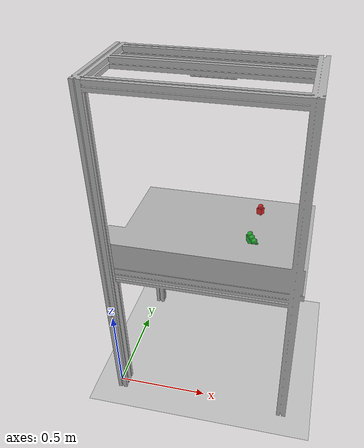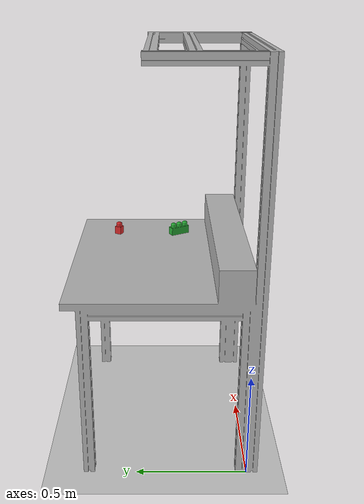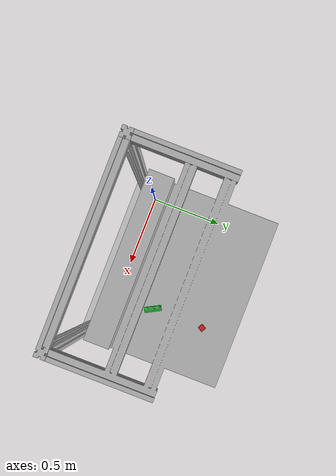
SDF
<?xml version="1.0" ?>
<sdf version="1.4">
  <world name="default">
    <physics type='ode'>
      <gravity>0 0 -9.81</gravity>
      <!-- max step size has to be a multiple of the desired task rate-->
      <max_step_size>0.001</max_step_size>
      <real_time_factor>1</real_time_factor>
    </physics>
    <!-- A global light source -->
    <include>
      <uri>model://sun</uri>
    </include>
    <!-- A ground plane -->
    <include>
      <uri>model://ground_plane</uri>
    </include>
    <include>
      <name>tavolo</name>
      <uri>model://tavolo</uri>
      <pose>0.0 0.0 0.0 0 0 0</pose>
    </include>

    <include>
      <name>MyBrick_1</name>
      <uri>model://X1-Y1-Z2</uri>
      <pose>0.7 0.6 0.9 0. 0. -0.5</pose>
    </include>

    <include>
      <name>MyBrick_2</name>
      <uri>model://X1-Y3-Z2</uri>
      <pose>0.7 0.3 0.9 0. 0. 0.5</pose>
    </include>

     <gui>
    <camera name="gzclient_camera">
      <pose>1. 3.2 2.2 0. 0.4 -1.75</pose>
    </camera>
    </gui>

  </world>
</sdf>

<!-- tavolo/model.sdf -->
<sdf version="1.4">

<physics type="ode">

      <ode>

        <constraints>
          <contact_max_correcting_vel>0.1</contact_max_correcting_vel>
          <contact_surface_layer>0.0001</contact_surface_layer>
        </constraints>
      </ode>
	<max_contacts>10</max_contacts>
	</physics>

	<model name="tavolo">
	    <static>true</static>
		<link name="link">

		     <collision name="base">
			<pose>0.5 0.4 0.85 0 0 0</pose>
			<geometry>
			  <box>
			    <size>1 0.8 0.04</size>
			  </box>
			</geometry>

				<!-- see https://gazebosim.org/tutorials?tut=physics_params&cat=physics-->
				 <surface>
				  <bounce>
				    <restitution_coefficient>0.01</restitution_coefficient>
				    <threshold>5.0</threshold>
				  </bounce>
				  <friction>
				    <ode>
				      <mu>10</mu>
				      <mu2>10</mu2>
				    </ode>
				  </friction>
				  <contact>
				     <ode>
					<max_vel>0.1</max_vel>
					<min_depth>0.001</min_depth>
				        <kp>1000000.0</kp>
					<kd>1000.0</kd>
				      </ode>
			            </contact>
				</surface>

		     	</collision>

	     			<collision name="box">
				<pose>0.5 0.08 0.95 0 0 0</pose>
				<geometry>
				  <box>
				    <size>1 0.15 0.15</size>
				  </box>
				</geometry>

				 <surface>
				  <bounce>
				    <restitution_coefficient>0.01</restitution_coefficient>
				    <threshold>5.0</threshold>
				  </bounce>
				  <friction>
				    <ode>
				      <mu>10</mu>
				      <mu2>10</mu2>
				    </ode>
				  </friction>
				  <contact>
				     <ode>
					<max_vel>0.1</max_vel>
					<min_depth>0.001</min_depth>
				        <kp>1000000.0</kp>
					<kd>1000.0</kd>
				      </ode>
			            </contact>
				</surface>

			      </collision>

			   <collision name="back">
				<pose>0.5 -0.02 1.35 1.57 0 0</pose>
				<geometry>
				  <box>
				    <size>1 1.0 0.04</size>
				  </box>
				</geometry>

				 <surface>
				  <bounce>
				    <restitution_coefficient>0.01</restitution_coefficient>
				    <threshold>5.0</threshold>
				  </bounce>
				  <friction>
				    <ode>
				      <mu>10</mu>
				      <mu2>10</mu2>
				    </ode>
				  </friction>
				  <contact>
				     <ode>
					<max_vel>0.1</max_vel>
					<min_depth>0.001</min_depth>
				        <kp>1000000.0</kp>
					<kd>1000.0</kd>
				      </ode>
			            </contact>
				</surface>

			      </collision>

			<visual name="visual">
				<geometry>
					<mesh>
						<uri>model://tavolo/mesh/tavolo.stl</uri>
                                                <scale>0.001 0.001 0.001</scale>
					</mesh>
				</geometry>
			</visual>
		</link>
	</model>
</sdf>

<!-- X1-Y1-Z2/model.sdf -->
<sdf version="1.6">

         <model name="X1-Y1-Z2">
             <static>0</static>
             <self_collide>0</self_collide>
             <allow_auto_disable>1</allow_auto_disable>

             <pose>0 0 0 0 -0 0</pose>

             <link name="link">

                 <gravity>1</gravity>
                 <self_collide>0</self_collide>
                 <kinematic>0</kinematic>

                 <inertial>
                    <!-- Volume:  7.9747940000e-06 -->
                    <mass> 10.0 </mass>

                    <!-- Center of mass:  1.4400000000e-06 -5.0000000000e-08  2.7859970000e-02 -->
                    <pose>  1.4400000000e-06 -5.0000000000e-08  2.7859970000e-02 0 0 0 </pose>

                    <!-- Inertia matrix -->
                    <inertia>
                        <ixx>  3.8954745414e-04 </ixx>
                        <ixy>  3.3856673915e-10 </ixy>
                        <ixz> -3.0082281749e-08 </ixz>
                        <iyy>  3.8955472706e-04 </iyy>
                        <iyz> -2.9217055638e-09 </iyz>
                        <izz>  2.4825571670e-04 </izz>
                    </inertia>
                </inertial>

                 <collision name="collision">
                     <!--
                         Maximum number of contacts allowed between two entities.
                         This value overrides the max_contacts element defined in physics.
                     -->
                     <max_contacts>20</max_contacts>

                    <pose>0 0 0 0 -0 0</pose>

                     <geometry>
                         <mesh>
                             <uri>model://X1-Y1-Z2/mesh/X1-Y1-Z2.stl</uri>
                             <!-- Scaling factor applied to the mesh -->
                             <scale>1.0 1.0 1.0</scale>
                         </mesh>
                     </geometry>
                     <!-- http://sdformat.org/spec?ver=1.6&elem=collision#surface_soft_contact -->
                     <surface></surface>
                 </collision>

                 <visual name="visual">
                     <cast_shadows>1</cast_shadows>
                     <transparency>0</transparency>

                    <pose>0 0 0 0 -0 0</pose>
                     <material>

                         <script>
                             <uri>file://media/materials/scripts/gazebo.material</uri>
                             <name>Gazebo/Red</name>
                         </script>
                         <shader type="vertex">
                           <normal_map>__default__</normal_map>
                         </shader>

                         <lighting>1</lighting>
 		                <ambient>1 0 0 1</ambient>
 		                <diffuse>1 0 0 1</diffuse>
 		                <specular>0 0 0 1</specular>
 		                <emissive>0 0 0 1</emissive>
                     </material>

                     <geometry>
                         <mesh>
                             <uri>model://X1-Y1-Z2/mesh/X1-Y1-Z2.stl</uri>
                             <!-- Scaling factor applied to the mesh -->
                             <scale>1.0 1.0 1.0</scale>
                         </mesh>
                     </geometry>
                 </visual>
             </link>
         </model>
     </sdf>

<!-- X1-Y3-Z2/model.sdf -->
<sdf version="1.6">

         <model name="mesh_X1-Y3-Z2">
             <static>0</static>
             <self_collide>0</self_collide>
             <allow_auto_disable>1</allow_auto_disable>

             <pose>0 0 0 0 -0 0</pose>

             <link name="link">

                 <gravity>1</gravity>
                 <self_collide>0</self_collide>
                 <kinematic>0</kinematic>

                 <inertial>
                    <!-- Volume:  2.1262192000e-05 -->
                    <mass> 1.0 </mass>

                    <!-- Center of mass:  4.0000000000e-08 -3.0000000000e-08  2.9132590000e-02 -->
                    <pose>  4.0000000000e-08 -3.0000000000e-08  2.9132590000e-02 0 0 0 </pose>

                    <!-- Inertia matrix -->
                    <inertia>
                        <ixx>  1.1461969161e-03 </ixx>
                        <ixy> -2.0223690953e-09 </ixy>
                        <ixz> -1.3310010558e-09 </ixz>
                        <iyy>  4.0332278064e-04 </iyy>
                        <iyz>  9.8766862796e-10 </iyz>
                        <izz>  1.0077595668e-03 </izz>
                    </inertia>
                </inertial>

                 <collision name="collision">
                     <!--
                         Maximum number of contacts allowed between two entities.
                         This value overrides the max_contacts element defined in physics.
                     -->
                     <max_contacts>20</max_contacts>

                     <pose>0 0 0 0 -0 0</pose>

                     <geometry>
                         <mesh>
                             <uri>model://X1-Y3-Z2/mesh/X1-Y3-Z2.stl</uri>
                             <!-- Scaling factor applied to the mesh -->
                             <scale>1.0 1.0 1.0</scale>
                         </mesh>
                     </geometry>
                     <!-- http://sdformat.org/spec?ver=1.6&elem=collision#surface_soft_contact -->
                     <surface></surface>
                 </collision>

                 <visual name="visual">
                     <cast_shadows>1</cast_shadows>
                     <transparency>0</transparency>

                    <pose>0 0 0 0 -0 0</pose>

                     <material>

                         <script>
                             <uri>file://media/materials/scripts/gazebo.material</uri>
                             <name>Gazebo/Green</name>
                         </script>
                         <shader type="vertex">
                           <normal_map>__default__</normal_map>
                         </shader>

                        <lighting>1</lighting>
 		                <ambient>0 0 1 1</ambient>
 		                <diffuse>0 0 1 1</diffuse>
 		                <specular>0.01 0.01 0.01 1</specular>
 		                <emissive>0 0 0 1</emissive>
                     </material>

                     <geometry>
                         <mesh>
                             <uri>model://X1-Y3-Z2/mesh/X1-Y3-Z2.stl</uri>
                             <!-- Scaling factor applied to the mesh -->
                             <scale>1.0 1.0 1.0</scale>
                         </mesh>
                     </geometry>
                 </visual>
             </link>
         </model>
     </sdf>
